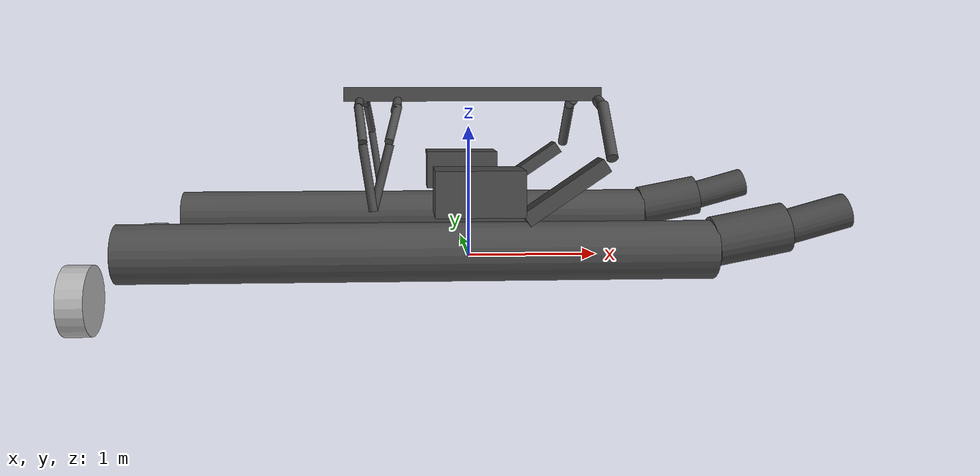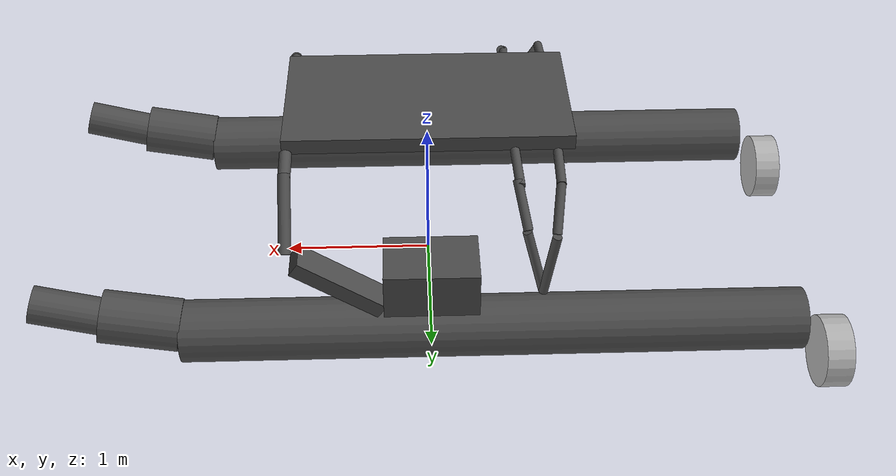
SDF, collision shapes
<sdf version='1.6'>
  <model name='boat'>
    <link name='base_link'>
      <pose>0 0 0 0 -0 0</pose>
      <inertial>
        <pose >0 0 0.124229 0 -0 0</pose>
        <mass>227</mass>
        <inertia>
          <ixx>181.42</ixx>
          <ixy>0</ixy>
          <ixz>0</ixz>
          <iyy>408.203</iyy>
          <iyz>0</iyz>
          <izz>495.037</izz>
        </inertia>
      </inertial>
      <collision name='base_link_fixed_joint_lump__left_float_collision'>
        <pose >-0.4 1.03 0.2 3.14159 1.57079 3.14159</pose>
        <geometry>
          <cylinder>
            <length>4</length>
            <radius>0.2</radius>
          </cylinder>
        </geometry>
      </collision>
      <collision name='base_link_fixed_joint_lump__left_mid_float_collision_1'>
        <pose>1.85 1.03 0.3 0 1.38 0</pose>
        <geometry>
          <cylinder>
            <length>0.5</length>
            <radius>0.17</radius>
          </cylinder>
        </geometry>
      </collision>
      <collision name='base_link_fixed_joint_lump__left_front_float_collision_2'>
        <pose>2.3 1.03 0.4 0 1.3 0</pose>
        <geometry>
          <cylinder>
            <length>0.45</length>
            <radius>0.12</radius>
          </cylinder>
        </geometry>
      </collision>
      <collision name='base_link_fixed_joint_lump__front_left_beam_lower_collision_3'>
        <pose>0.9 0.85 1 0.78 -0 0</pose>
        <geometry>
          <cylinder>
            <length>0.5</length>
            <radius>0.04</radius>
          </cylinder>
        </geometry>
      </collision>
      <collision name='base_link_fixed_joint_lump__front_left_beam_upper_collision_4'>
        <pose>0.9 0.6 1.18 1.35 -0 0</pose>
        <geometry>
          <cylinder>
            <length>0.2</length>
            <radius>0.04</radius>
          </cylinder>
        </geometry>
      </collision>
      <collision name='base_link_fixed_joint_lump__mid_left_beam_lower_collision_5'>
        <pose>-0.65 0.99 0.7 0.1 0.25 0</pose>
        <geometry>
          <cylinder>
            <length>0.45</length>
            <radius>0.03</radius>
          </cylinder>
        </geometry>
      </collision>
      <collision name='base_link_fixed_joint_lump__mid_left_beam_medium_collision_6'>
        <pose>-0.57 0.87 1.05 0.75 0.25 0</pose>
        <geometry>
          <cylinder>
            <length>0.32</length>
            <radius>0.03</radius>
          </cylinder>
        </geometry>
      </collision>
      <collision name='base_link_fixed_joint_lump__mid_left_beam_upper_collision_7'>
        <pose>-0.55 0.65 1.17 1.35 0.25 0</pose>
        <geometry>
          <cylinder>
            <length>0.3</length>
            <radius>0.03</radius>
          </cylinder>
        </geometry>
      </collision>
      <collision name='base_link_fixed_joint_lump__rear_left_beam_lower_collision_8'>
        <pose>-0.74 1.03 0.7 0 -0.15 0</pose>
        <geometry>
          <cylinder>
            <length>0.45</length>
            <radius>0.03</radius>
          </cylinder>
        </geometry>
      </collision>
      <collision name='base_link_fixed_joint_lump__rear_left_beam_medium_collision_9'>
        <pose>-0.79 0.91 1.05 0.75 -0.15 -0</pose>
        <geometry>
          <cylinder>
            <length>0.32</length>
            <radius>0.03</radius>
          </cylinder>
        </geometry>
      </collision>
      <collision name='base_link_fixed_joint_lump__rear_left_beam_upper_collision_10'>
        <pose>-0.81 0.67 1.18 1.45 -0.15 0</pose>
        <geometry>
          <cylinder>
            <length>0.3</length>
            <radius>0.03</radius>
          </cylinder>
        </geometry>
      </collision>
      <collision name='base_link_fixed_joint_lump__left_joint_collision_11'>
        <pose>0.58 1.03 0.6 0 -0.6 0</pose>
        <geometry>
          <box>
            <size>0.65 0.2 0.1</size>
          </box>
        </geometry>
      </collision>
      <collision name='base_link_fixed_joint_lump__right_float_collision_12'>
        <pose>-0.4 -1.03 0.2 3.14159 1.57079 3.14159</pose>
        <geometry>
          <cylinder>
            <length>4</length>
            <radius>0.2</radius>
          </cylinder>
        </geometry>
      </collision>
      <collision name='base_link_fixed_joint_lump__right_mid_float_collision_13'>
        <pose>1.85 -1.03 0.3 0 1.38 0</pose>
        <geometry>
          <cylinder>
            <length>0.5</length>
            <radius>0.17</radius>
          </cylinder>
        </geometry>
      </collision>
      <collision name='base_link_fixed_joint_lump__right_front_float_collision_14'>
        <pose>2.3 -1.03 0.4 0 1.3 0</pose>
        <geometry>
          <cylinder>
            <length>0.45</length>
            <radius>0.12</radius>
          </cylinder>
        </geometry>
      </collision>
      <collision name='base_link_fixed_joint_lump__front_right_beam_lower_collision_15'>
        <pose>0.9 -0.85 1 -0.78 0 0</pose>
        <geometry>
          <cylinder>
            <length>0.5</length>
            <radius>0.04</radius>
          </cylinder>
        </geometry>
      </collision>
      <collision name='base_link_fixed_joint_lump__front_right_beam_upper_collision_16'>
        <pose>0.9 -0.6 1.18 -1.35 0 0</pose>
        <geometry>
          <cylinder>
            <length>0.2</length>
            <radius>0.04</radius>
          </cylinder>
        </geometry>
      </collision>
      <collision name='base_link_fixed_joint_lump__mid_right_beam_lower_collision_17'>
        <pose>-0.65 -0.99 0.7 -0.1 0.25 0</pose>
        <geometry>
          <cylinder>
            <length>0.45</length>
            <radius>0.03</radius>
          </cylinder>
        </geometry>
      </collision>
      <collision name='base_link_fixed_joint_lump__mid_right_beam_medium_collision_18'>
        <pose>-0.57 -0.87 1.05 -0.75 0.25 0</pose>
        <geometry>
          <cylinder>
            <length>0.32</length>
            <radius>0.03</radius>
          </cylinder>
        </geometry>
      </collision>
      <collision name='base_link_fixed_joint_lump__mid_right_beam_upper_collision_19'>
        <pose>-0.55 -0.65 1.17 -1.35 0.25 0</pose>
        <geometry>
          <cylinder>
            <length>0.3</length>
            <radius>0.03</radius>
          </cylinder>
        </geometry>
      </collision>
      <collision name='base_link_fixed_joint_lump__rear_right_beam_lower_collision_20'>
        <pose>-0.74 -1.03 0.7 0 -0.15 0</pose>
        <geometry>
          <cylinder>
            <length>0.45</length>
            <radius>0.03</radius>
          </cylinder>
        </geometry>
      </collision>
      <collision name='base_link_fixed_joint_lump__rear_right_beam_medium_collision_21'>
        <pose>-0.79 -0.91 1.05 -0.75 -0.15 0</pose>
        <geometry>
          <cylinder>
            <length>0.32</length>
            <radius>0.03</radius>
          </cylinder>
        </geometry>
      </collision>
      <collision name='base_link_fixed_joint_lump__rear_right_beam_upper_collision_22'>
        <pose>-0.81 -0.67 1.18 -1.45 -0.15 0</pose>
        <geometry>
          <cylinder>
            <length>0.3</length>
            <radius>0.03</radius>
          </cylinder>
        </geometry>
      </collision>
      <collision name='base_link_fixed_joint_lump__right_joint_collision_23'>
        <pose>0.58 -1.03 0.6 0 -0.6 0</pose>
        <geometry>
          <box>
            <size>0.65 0.2 0.1</size>
          </box>
        </geometry>
      </collision>
      <collision name='base_link_fixed_joint_lump__top_base_collision_24'>
        <pose>0 0 1.25 0 -0 0</pose>
        <geometry>
          <box>
            <size>1.85 1 0.1</size>
          </box>
        </geometry>
      </collision>
      <collision name='base_link_fixed_joint_lump__left_battery_collision_collision_25'>
        <pose>0 1 0.6 0 -0 0</pose>
        <geometry>
          <box>
            <size>0.6 0.4 0.31</size>
          </box>
        </geometry>
      </collision>
      <collision name='base_link_fixed_joint_lump__right_battery_collision_collision_26'>
        <pose>0 -1 0.6 0 -0 0</pose>
        <geometry>
          <box>
            <size>0.6 0.4 0.31</size>
          </box>
        </geometry>
      </collision>
      <visual name='base_link_fixed_joint_lump__dummy_link_visual'>
        <pose>0 0 0 0 -0 0</pose>
        <geometry>
          <mesh>
            <scale>1 1 1</scale>
            <uri>model://boat/meshes/body.dae</uri>
          </mesh>
        </geometry>
      </visual>
      <visual name='base_link_fixed_joint_lump__left_battery_visual_visual_1'>
        <pose>0 -0.03 0 0 -0 0</pose>
        <geometry>
          <mesh>
            <scale>1 1 1</scale>
            <uri>model://boat/meshes/battery.dae</uri>
          </mesh>
        </geometry>
        <material>
          <script>
            <name>Gazebo/DarkGrey</name>
            <uri>__default__</uri>
          </script>
        </material>
      </visual>
      <visual name='base_link_fixed_joint_lump__right_battery_visual_visual_2'>
        <pose>0 -2.03 0 0 -0 0</pose>
        <geometry>
          <mesh>
            <scale>1 1 1</scale>
            <uri>model://boat/meshes/battery.dae</uri>
          </mesh>
        </geometry>
        <material>
          <script>
            <name>Gazebo/DarkGrey</name>
            <uri>__default__</uri>
          </script>
        </material>
      </visual>
      <visual name='right_engine_link_visual'>
        <pose>-2.37378 -1.02713 0.318237 0 -0 0</pose>
        <geometry>
          <mesh>
            <scale>1 1 1</scale>
            <uri>model://boat/meshes//engine.dae</uri>
          </mesh>
        </geometry>
      </visual>
      <visual name='left_engine_link_visual'>
        <pose>-2.37378 1.02713 0.318237 0 -0 0</pose>
        <geometry>
          <mesh>
            <scale>1 1 1</scale>
            <uri>model://boat/meshes//engine.dae</uri>
          </mesh>
        </geometry>
      </visual>
    </link>
    <link name='left_propeller_link'>
      <pose>-2.65193 1.02713 -0.191134 0 1.57079 0</pose>
      <inertial>
        <pose>0 0 0 0 -0 0</pose>
        <mass>0.5</mass>
        <inertia>
          <ixx>0.008545</ixx>
          <ixy>0</ixy>
          <ixz>0</ixz>
          <iyy>0.008545</iyy>
          <iyz>0</iyz>
          <izz>0.0144</izz>
        </inertia>
      </inertial>
      <collision name='left_propeller_link_fixed_joint_lump__left_propeller_collision_collision'>
        <pose>-0.08 0 0 3.14159 0.0 3.14159</pose>
        <geometry>
          <cylinder>
            <length>0.18</length>
            <radius>0.24</radius>
          </cylinder>
        </geometry>
      </collision>
      <visual name='left_propeller_link_visual'>
        <pose>0 0 0 0 -1.57079 0</pose>
        <geometry>
          <mesh>
            <scale>1 1 1</scale>
            <uri>model://boat/meshes/propeller.dae</uri>
          </mesh>
        </geometry>
      </visual>
    </link>
    <joint name='left_engine_propeller_joint' type='revolute'>
      <child>left_propeller_link</child>
      <parent>base_link</parent>
      <axis>
        <xyz>1 0 0</xyz>
        <limit>
          <lower>-1e+16</lower>
          <upper>1e+16</upper>
        </limit>
        <dynamics>
          <spring_reference>0</spring_reference>
          <spring_stiffness>0</spring_stiffness>
        </dynamics>
        <use_parent_model_frame>1</use_parent_model_frame>
      </axis>
    </joint>
    <link name='right_propeller_link'>
      <pose>-2.65193 -1.02713 -0.191134 0 1.57079 0</pose>
      <inertial>
        <pose>0 0 0 0 -0 0</pose>
        <mass>0.5</mass>
        <inertia>
          <ixx>0.008545</ixx>
          <ixy>0</ixy>
          <ixz>0</ixz>
          <iyy>0.008545</iyy>
          <iyz>0</iyz>
          <izz>0.0144</izz>
        </inertia>
      </inertial>
      <collision name='right_propeller_link_fixed_joint_lump__right_propeller_collision_collision'>
        <pose>-0.08 0 0 3.14159 0.0 3.14159</pose>
        <geometry>
          <cylinder>
            <length>0.18</length>
            <radius>0.24</radius>
          </cylinder>
        </geometry>
      </collision>
      <visual name='right_propeller_link_visual'>
        <pose>0 0 0 0 -1.57079 0</pose>
        <geometry>
          <mesh>
            <scale>1 1 1</scale>
            <uri>model://boat/meshes/propeller.dae</uri>
          </mesh>
        </geometry>
      </visual>
    </link>
    <link name='boat/imu_link'>
      <pose>0 0 0 0 0 0</pose>
      <inertial>
        <pose>0 0 0 0 0 0</pose>
        <mass>0.015</mass>
        <inertia>
          <ixx>1e-05</ixx>
          <ixy>0</ixy>
          <ixz>0</ixz>
          <iyy>1e-05</iyy>
          <iyz>0</iyz>
          <izz>1e-05</izz>
        </inertia>
      </inertial>
    </link>
    <joint name='right_engine_propeller_joint' type='revolute'>
      <child>right_propeller_link</child>
      <parent>base_link</parent>
      <axis>
        <xyz>1 0 0</xyz>
        <limit>
          <lower>-1e+16</lower>
          <upper>1e+16</upper>
        </limit>
        <dynamics>
          <spring_reference>0</spring_reference>
          <spring_stiffness>0</spring_stiffness>
        </dynamics>
        <use_parent_model_frame>1</use_parent_model_frame>
      </axis>
    </joint>
    <joint name='boat/imu_joint' type='revolute'>
      <child>boat/imu_link</child>
      <parent>base_link</parent>
      <axis>
        <xyz>1 0 0</xyz>
        <limit>
          <lower>0</lower>
          <upper>0</upper>
          <effort>0</effort>
          <velocity>0</velocity>
        </limit>
        <dynamics>
          <spring_reference>0</spring_reference>
          <spring_stiffness>0</spring_stiffness>
        </dynamics>
        <use_parent_model_frame>1</use_parent_model_frame>
      </axis>
    </joint>
    <plugin name='gazebo_imu_plugin' filename='libgazebo_imu_plugin.so'>
      <robotNamespace></robotNamespace>
      <linkName>boat/imu_link</linkName>
      <imuTopic>/imu</imuTopic>
      <gyroscopeNoiseDensity>0.0003394</gyroscopeNoiseDensity>
      <gyroscopeRandomWalk>3.8785e-05</gyroscopeRandomWalk>
      <gyroscopeBiasCorrelationTime>1000.0</gyroscopeBiasCorrelationTime>
      <gyroscopeTurnOnBiasSigma>0.0087</gyroscopeTurnOnBiasSigma>
      <accelerometerNoiseDensity>0.004</accelerometerNoiseDensity>
      <accelerometerRandomWalk>0.006</accelerometerRandomWalk>
      <accelerometerBiasCorrelationTime>300.0</accelerometerBiasCorrelationTime>
      <accelerometerTurnOnBiasSigma>0.196</accelerometerTurnOnBiasSigma>
    </plugin>
    <plugin name="gps_plugin" filename="libgazebo_gps_plugin.so">
        <robotNamespace></robotNamespace>
        <gpsNoise>true</gpsNoise>
        <homeLatitude>47.343609</homeLatitude>
        <homeLongitude>8.541391</homeLongitude>
    </plugin>
    <plugin name='magnetometer_plugin' filename='libgazebo_magnetometer_plugin.so'>
      <robotNamespace/>
      <pubRate>100</pubRate>
      <noiseDensity>0.0004</noiseDensity>
      <randomWalk>6.4e-06</randomWalk>
      <biasCorrelationTime>600</biasCorrelationTime>
      <magTopic>/mag</magTopic>
    </plugin>
    <plugin name='barometer_plugin' filename='libgazebo_barometer_plugin.so'>
      <robotNamespace/>
      <pubRate>50</pubRate>
      <baroTopic>/baro</baroTopic>
    </plugin>
    <static>0</static>
    <plugin name='left_motor_model' filename='libgazebo_motor_model.so'>
      <robotNamespace></robotNamespace>
      <jointName>left_engine_propeller_joint</jointName>
      <linkName>left_propeller_link</linkName>
      <turningDirection>cw</turningDirection>
      <timeConstantUp>0.0125</timeConstantUp>
      <timeConstantDown>0.025</timeConstantDown>
      <maxRotVelocity>1100</maxRotVelocity>
      <motorConstant>8.54858e-03</motorConstant>
      <momentConstant>0.01</momentConstant>
      <commandSubTopic>/gazebo/command/motor_speed</commandSubTopic>
      <motorNumber>0</motorNumber>
      <rotorDragCoefficient>0.000806428</rotorDragCoefficient>
      <rollingMomentCoefficient>1e-06</rollingMomentCoefficient>
      <motorSpeedPubTopic>/motor_speed/0</motorSpeedPubTopic>
      <rotorVelocitySlowdownSim>10</rotorVelocitySlowdownSim>
    </plugin>
    <plugin name='right_motor_model' filename='libgazebo_motor_model.so'>
      <robotNamespace></robotNamespace>
      <jointName>right_engine_propeller_joint</jointName>
      <linkName>right_propeller_link</linkName>
      <turningDirection>cw</turningDirection>
      <timeConstantUp>0.0125</timeConstantUp>
      <timeConstantDown>0.025</timeConstantDown>
      <maxRotVelocity>1100</maxRotVelocity>
      <motorConstant>8.54858e-03</motorConstant>
      <momentConstant>0.01</momentConstant>
      <commandSubTopic>/gazebo/command/motor_speed</commandSubTopic>
      <motorNumber>1</motorNumber>
      <rotorDragCoefficient>0.000806428</rotorDragCoefficient>
      <rollingMomentCoefficient>1e-06</rollingMomentCoefficient>
      <motorSpeedPubTopic>/motor_speed/1</motorSpeedPubTopic>
      <rotorVelocitySlowdownSim>10</rotorVelocitySlowdownSim>
    </plugin>
    <plugin name='usv_dynamics_wamv_dynamics_plugin' filename='libgazebo_usv_dynamics_plugin.so'>
      <bodyName>base_link</bodyName>
      <waterLevel>0</waterLevel>
      <waterDensity>997.8</waterDensity>
      <xDotU>0.0</xDotU>
      <yDotV>0.0</yDotV>
      <nDotR>0.0</nDotR>
      <xU>51.3</xU>
      <xUU>72.4</xUU>
      <yV>40.0</yV>
      <yVV>0.0</yVV>
      <zW>500.0</zW>
      <kP>50.0</kP>
      <mQ>50.0</mQ>
      <nR>400.0</nR>
      <nRR>0.0</nRR>
      <hullRadius>0.213</hullRadius>
      <boatWidth>1</boatWidth>
      <boatLength>1.2</boatLength>
      <length_n>1</length_n>
      <wave_model>ocean_waves</wave_model>
    </plugin>
    <plugin name='mavlink_interface' filename='libgazebo_mavlink_interface.so'>
      <robotNamespace></robotNamespace>
      <imuSubTopic>/imu</imuSubTopic>
      <gpsSubTopic>/gps</gpsSubTopic>
      <magSubTopic>/mag</magSubTopic>
      <baroSubTopic>/baro</baroSubTopic>
      <mavlink_addr>INADDR_ANY</mavlink_addr>
      <mavlink_udp_port>14560</mavlink_udp_port>
      <serialEnabled>false</serialEnabled>
      <serialDevice>/dev/ttyACM0</serialDevice>
      <baudRate>921600</baudRate>
      <qgc_addr>INADDR_ANY</qgc_addr>
      <qgc_udp_port>14550</qgc_udp_port>
      <sdk_addr>INADDR_ANY</sdk_addr>
      <sdk_udp_port>14540</sdk_udp_port>
      <hil_mode>false</hil_mode>
      <hil_state_level>false</hil_state_level>
      <enable_lockstep>true</enable_lockstep>
      <use_tcp>true</use_tcp>
      <motorSpeedCommandPubTopic>/gazebo/command/motor_speed</motorSpeedCommandPubTopic>
      <control_channels>
        <channel name="left_rotor">
          <input_index>0</input_index>
          <input_offset>0</input_offset>
          <input_scaling>100</input_scaling>
          <zero_position_disarmed>0</zero_position_disarmed>
          <zero_position_armed>0</zero_position_armed>
          <joint_control_type>velocity</joint_control_type>
          <joint_name>left_engine_propeller_joint</joint_name>
        </channel>
        <channel name="right_rotor">
          <input_index>1</input_index>
          <input_offset>0</input_offset>
          <input_scaling>100</input_scaling>
          <zero_position_disarmed>0</zero_position_disarmed>
          <zero_position_armed>0</zero_position_armed>
          <joint_control_type>velocity</joint_control_type>
          <joint_name>right_engine_propeller_joint</joint_name>
        </channel>
      </control_channels>
    </plugin>
  </model>
</sdf>
